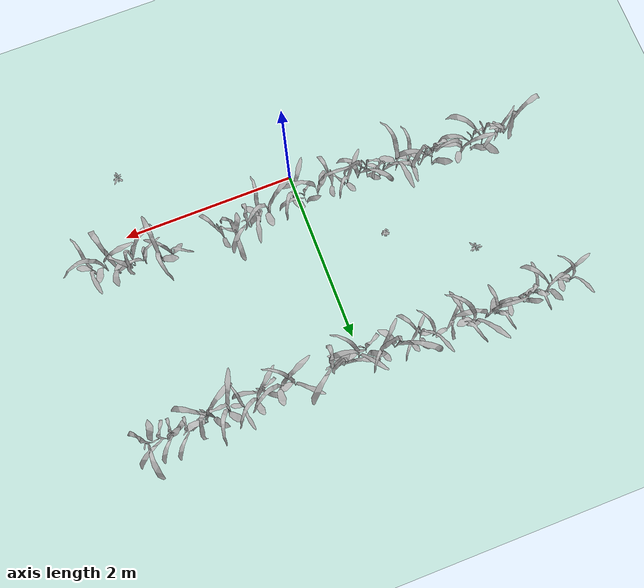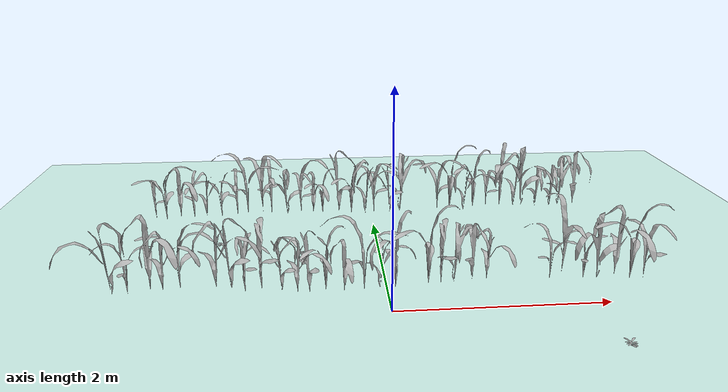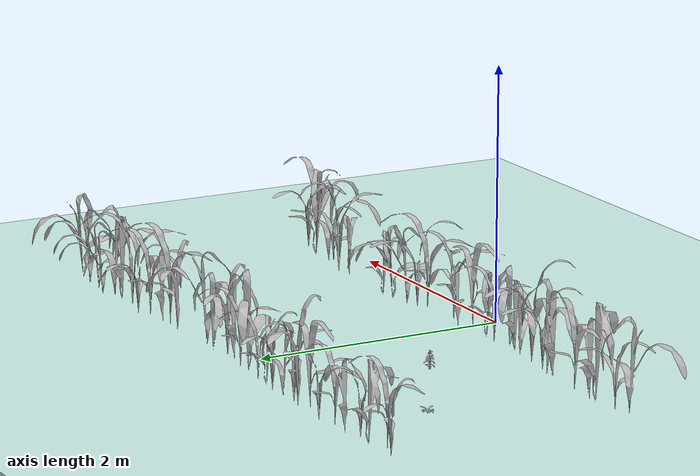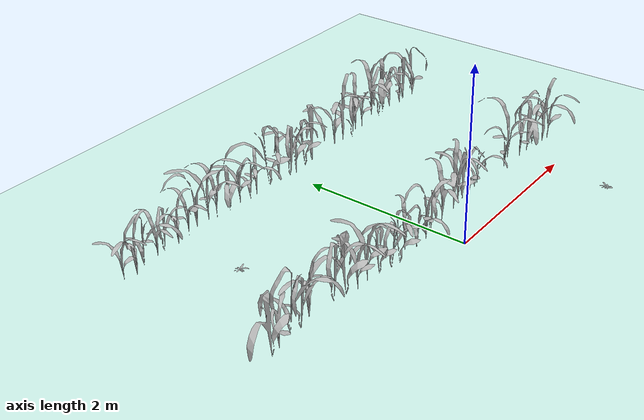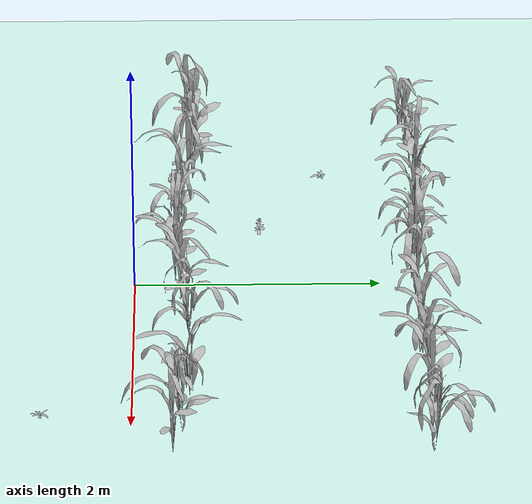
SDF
<sdf version="1.9">
 <world name="feild">
  <model name="ground">
   <static>true</static>
   <pose>0.00 3.25 -0.025 0 0 0</pose>
   <link name="link">
    <collision name="collision">
     <geometry><box><size>9.00 17.30 0.05</size></box></geometry>
     <surface><friction><ode><mu>1.0</mu><mu2>1.0</mu2></ode></friction></surface>
    </collision>
    <visual name="visual">
     <geometry><box><size>9.00 17.30 0.05</size></box></geometry>
     <material>
      <diffuse>0.81 0.95 0.92 1</diffuse>
      <pbr>
       <metal>
        <albedo_map>model://materials/textures/grass_color.jpg</albedo_map>
        <normal_map>model://materials/textures/grass_normal.jpg</normal_map>
       </metal>
      </pbr>
     </material>
    </visual>
   </link>
  </model>
  <model name="row_03">
   <static>true</static>
   <pose>0 0.400 0 0 0 0</pose>
   <link name="link">
    <visual name="p000">
     <pose>-2.514 0.016 0.056 0 0 4.29</pose>
     <geometry>
      <mesh><uri>model://maize_01/meshes/maize_01.dae</uri><scale>0.7590 0.7590 0.7590</scale></mesh>
     </geometry>
    </visual>
    <collision name="p000_c">
     <pose>-2.514 0.016 0.278 0 0 0</pose>
     <geometry><box><size>0.022 0.022 0.444</size></box></geometry>
    </collision>
    <visual name="p001">
     <pose>-2.380 0.047 0.042 0 0 2.70</pose>
     <geometry>
      <mesh><uri>model://maize_02/meshes/maize_02.dae</uri><scale>0.5744 0.5744 0.5744</scale></mesh>
     </geometry>
    </visual>
    <collision name="p001_c">
     <pose>-2.380 0.047 0.210 0 0 0</pose>
     <geometry><box><size>0.017 0.017 0.336</size></box></geometry>
    </collision>
    <visual name="p002">
     <pose>-2.186 0.082 0.058 0 0 6.25</pose>
     <geometry>
      <mesh><uri>model://maize_01/meshes/maize_01.dae</uri><scale>0.7957 0.7957 0.7957</scale></mesh>
     </geometry>
    </visual>
    <collision name="p002_c">
     <pose>-2.186 0.082 0.291 0 0 0</pose>
     <geometry><box><size>0.023 0.023 0.466</size></box></geometry>
    </collision>
    <visual name="p003">
     <pose>-2.066 0.058 0.047 0 0 0.44</pose>
     <geometry>
      <mesh><uri>model://maize_01/meshes/maize_01.dae</uri><scale>0.6481 0.6481 0.6481</scale></mesh>
     </geometry>
    </visual>
    <collision name="p003_c">
     <pose>-2.066 0.058 0.237 0 0 0</pose>
     <geometry><box><size>0.019 0.019 0.379</size></box></geometry>
    </collision>
    <visual name="p004">
     <pose>-1.915 0.091 0.052 0 0 5.27</pose>
     <geometry>
      <mesh><uri>model://maize_02/meshes/maize_02.dae</uri><scale>0.7047 0.7047 0.7047</scale></mesh>
     </geometry>
    </visual>
    <collision name="p004_c">
     <pose>-1.915 0.091 0.258 0 0 0</pose>
     <geometry><box><size>0.021 0.021 0.413</size></box></geometry>
    </collision>
    <visual name="p006">
     <pose>-1.582 0.064 0.053 0 0 0.52</pose>
     <geometry>
      <mesh><uri>model://maize_01/meshes/maize_01.dae</uri><scale>0.7249 0.7249 0.7249</scale></mesh>
     </geometry>
    </visual>
    <collision name="p006_c">
     <pose>-1.582 0.064 0.265 0 0 0</pose>
     <geometry><box><size>0.021 0.021 0.424</size></box></geometry>
    </collision>
    <visual name="p007">
     <pose>-1.443 0.031 0.056 0 0 3.80</pose>
     <geometry>
      <mesh><uri>model://maize_01/meshes/maize_01.dae</uri><scale>0.7638 0.7638 0.7638</scale></mesh>
     </geometry>
    </visual>
    <collision name="p007_c">
     <pose>-1.443 0.031 0.280 0 0 0</pose>
     <geometry><box><size>0.022 0.022 0.447</size></box></geometry>
    </collision>
    <visual name="p008">
     <pose>-1.313 -0.012 0.047 0 0 3.64</pose>
     <geometry>
      <mesh><uri>model://maize_02/meshes/maize_02.dae</uri><scale>0.6411 0.6411 0.6411</scale></mesh>
     </geometry>
    </visual>
    <collision name="p008_c">
     <pose>-1.313 -0.012 0.235 0 0 0</pose>
     <geometry><box><size>0.019 0.019 0.375</size></box></geometry>
    </collision>
    <visual name="p009">
     <pose>-1.161 -0.012 0.058 0 0 3.81</pose>
     <geometry>
      <mesh><uri>model://maize_02/meshes/maize_02.dae</uri><scale>0.7976 0.7976 0.7976</scale></mesh>
     </geometry>
    </visual>
    <collision name="p009_c">
     <pose>-1.161 -0.012 0.292 0 0 0</pose>
     <geometry><box><size>0.023 0.023 0.467</size></box></geometry>
    </collision>
    <visual name="p010">
     <pose>-0.979 -0.020 0.043 0 0 3.66</pose>
     <geometry>
      <mesh><uri>model://maize_01/meshes/maize_01.dae</uri><scale>0.5868 0.5868 0.5868</scale></mesh>
     </geometry>
    </visual>
    <collision name="p010_c">
     <pose>-0.979 -0.020 0.215 0 0 0</pose>
     <geometry><box><size>0.017 0.017 0.344</size></box></geometry>
    </collision>
    <visual name="p011">
     <pose>-0.833 -0.069 0.044 0 0 0.21</pose>
     <geometry>
      <mesh><uri>model://maize_01/meshes/maize_01.dae</uri><scale>0.5956 0.5956 0.5956</scale></mesh>
     </geometry>
    </visual>
    <collision name="p011_c">
     <pose>-0.833 -0.069 0.218 0 0 0</pose>
     <geometry><box><size>0.017 0.017 0.349</size></box></geometry>
    </collision>
    <visual name="p012">
     <pose>-0.724 -0.086 0.049 0 0 3.24</pose>
     <geometry>
      <mesh><uri>model://maize_01/meshes/maize_01.dae</uri><scale>0.6717 0.6717 0.6717</scale></mesh>
     </geometry>
    </visual>
    <collision name="p012_c">
     <pose>-0.724 -0.086 0.246 0 0 0</pose>
     <geometry><box><size>0.020 0.020 0.393</size></box></geometry>
    </collision>
    <visual name="p013">
     <pose>-0.576 -0.043 0.046 0 0 6.15</pose>
     <geometry>
      <mesh><uri>model://maize_02/meshes/maize_02.dae</uri><scale>0.6242 0.6242 0.6242</scale></mesh>
     </geometry>
    </visual>
    <collision name="p013_c">
     <pose>-0.576 -0.043 0.228 0 0 0</pose>
     <geometry><box><size>0.018 0.018 0.366</size></box></geometry>
    </collision>
    <visual name="p014">
     <pose>-0.409 -0.078 0.041 0 0 5.66</pose>
     <geometry>
      <mesh><uri>model://maize_01/meshes/maize_01.dae</uri><scale>0.5643 0.5643 0.5643</scale></mesh>
     </geometry>
    </visual>
    <collision name="p014_c">
     <pose>-0.409 -0.078 0.206 0 0 0</pose>
     <geometry><box><size>0.017 0.017 0.330</size></box></geometry>
    </collision>
    <visual name="p015">
     <pose>-0.223 -0.067 0.057 0 0 2.05</pose>
     <geometry>
      <mesh><uri>model://maize_02/meshes/maize_02.dae</uri><scale>0.7739 0.7739 0.7739</scale></mesh>
     </geometry>
    </visual>
    <collision name="p015_c">
     <pose>-0.223 -0.067 0.283 0 0 0</pose>
     <geometry><box><size>0.023 0.023 0.453</size></box></geometry>
    </collision>
    <visual name="p016">
     <pose>-0.072 -0.027 0.041 0 0 0.91</pose>
     <geometry>
      <mesh><uri>model://maize_01/meshes/maize_01.dae</uri><scale>0.5534 0.5534 0.5534</scale></mesh>
     </geometry>
    </visual>
    <collision name="p016_c">
     <pose>-0.072 -0.027 0.203 0 0 0</pose>
     <geometry><box><size>0.016 0.016 0.324</size></box></geometry>
    </collision>
    <visual name="p017">
     <pose>0.065 -0.068 0.054 0 0 0.02</pose>
     <geometry>
      <mesh><uri>model://maize_02/meshes/maize_02.dae</uri><scale>0.7423 0.7423 0.7423</scale></mesh>
     </geometry>
    </visual>
    <collision name="p017_c">
     <pose>0.065 -0.068 0.272 0 0 0</pose>
     <geometry><box><size>0.022 0.022 0.435</size></box></geometry>
    </collision>
    <visual name="p019">
     <pose>0.379 -0.019 0.058 0 0 5.85</pose>
     <geometry>
      <mesh><uri>model://maize_02/meshes/maize_02.dae</uri><scale>0.7911 0.7911 0.7911</scale></mesh>
     </geometry>
    </visual>
    <collision name="p019_c">
     <pose>0.379 -0.019 0.289 0 0 0</pose>
     <geometry><box><size>0.023 0.023 0.463</size></box></geometry>
    </collision>
    <visual name="p020">
     <pose>0.503 0.002 0.053 0 0 3.51</pose>
     <geometry>
      <mesh><uri>model://maize_02/meshes/maize_02.dae</uri><scale>0.7218 0.7218 0.7218</scale></mesh>
     </geometry>
    </visual>
    <collision name="p020_c">
     <pose>0.503 0.002 0.264 0 0 0</pose>
     <geometry><box><size>0.021 0.021 0.423</size></box></geometry>
    </collision>
    <visual name="p021">
     <pose>0.633 0.021 0.048 0 0 1.59</pose>
     <geometry>
      <mesh><uri>model://maize_01/meshes/maize_01.dae</uri><scale>0.6605 0.6605 0.6605</scale></mesh>
     </geometry>
    </visual>
    <collision name="p021_c">
     <pose>0.633 0.021 0.242 0 0 0</pose>
     <geometry><box><size>0.019 0.019 0.387</size></box></geometry>
    </collision>
    <visual name="p022">
     <pose>0.812 0.047 0.047 0 0 2.33</pose>
     <geometry>
      <mesh><uri>model://maize_01/meshes/maize_01.dae</uri><scale>0.6360 0.6360 0.6360</scale></mesh>
     </geometry>
    </visual>
    <collision name="p022_c">
     <pose>0.812 0.047 0.233 0 0 0</pose>
     <geometry><box><size>0.019 0.019 0.372</size></box></geometry>
    </collision>
    <visual name="p023">
     <pose>0.948 0.053 0.041 0 0 6.05</pose>
     <geometry>
      <mesh><uri>model://maize_01/meshes/maize_01.dae</uri><scale>0.5668 0.5668 0.5668</scale></mesh>
     </geometry>
    </visual>
    <collision name="p023_c">
     <pose>0.948 0.053 0.207 0 0 0</pose>
     <geometry><box><size>0.017 0.017 0.332</size></box></geometry>
    </collision>
    <visual name="p027">
     <pose>1.556 0.025 0.042 0 0 1.51</pose>
     <geometry>
      <mesh><uri>model://maize_02/meshes/maize_02.dae</uri><scale>0.5714 0.5714 0.5714</scale></mesh>
     </geometry>
    </visual>
    <collision name="p027_c">
     <pose>1.556 0.025 0.209 0 0 0</pose>
     <geometry><box><size>0.017 0.017 0.335</size></box></geometry>
    </collision>
    <visual name="p028">
     <pose>1.678 0.053 0.059 0 0 0.69</pose>
     <geometry>
      <mesh><uri>model://maize_02/meshes/maize_02.dae</uri><scale>0.8059 0.8059 0.8059</scale></mesh>
     </geometry>
    </visual>
    <collision name="p028_c">
     <pose>1.678 0.053 0.295 0 0 0</pose>
     <geometry><box><size>0.024 0.024 0.472</size></box></geometry>
    </collision>
    <visual name="p029">
     <pose>1.873 -0.004 0.041 0 0 2.48</pose>
     <geometry>
      <mesh><uri>model://maize_02/meshes/maize_02.dae</uri><scale>0.5603 0.5603 0.5603</scale></mesh>
     </geometry>
    </visual>
    <collision name="p029_c">
     <pose>1.873 -0.004 0.205 0 0 0</pose>
     <geometry><box><size>0.016 0.016 0.328</size></box></geometry>
    </collision>
    <visual name="p030">
     <pose>1.995 -0.026 0.053 0 0 4.62</pose>
     <geometry>
      <mesh><uri>model://maize_01/meshes/maize_01.dae</uri><scale>0.7192 0.7192 0.7192</scale></mesh>
     </geometry>
    </visual>
    <collision name="p030_c">
     <pose>1.995 -0.026 0.263 0 0 0</pose>
     <geometry><box><size>0.021 0.021 0.421</size></box></geometry>
    </collision>
    <visual name="p031">
     <pose>2.173 -0.006 0.057 0 0 5.78</pose>
     <geometry>
      <mesh><uri>model://maize_01/meshes/maize_01.dae</uri><scale>0.7788 0.7788 0.7788</scale></mesh>
     </geometry>
    </visual>
    <collision name="p031_c">
     <pose>2.173 -0.006 0.285 0 0 0</pose>
     <geometry><box><size>0.023 0.023 0.456</size></box></geometry>
    </collision>
    <visual name="p032">
     <pose>2.300 -0.072 0.058 0 0 5.45</pose>
     <geometry>
      <mesh><uri>model://maize_02/meshes/maize_02.dae</uri><scale>0.7959 0.7959 0.7959</scale></mesh>
     </geometry>
    </visual>
    <collision name="p032_c">
     <pose>2.300 -0.072 0.291 0 0 0</pose>
     <geometry><box><size>0.023 0.023 0.466</size></box></geometry>
    </collision>
    <visual name="p033">
     <pose>2.434 -0.072 0.049 0 0 3.89</pose>
     <geometry>
      <mesh><uri>model://maize_02/meshes/maize_02.dae</uri><scale>0.6759 0.6759 0.6759</scale></mesh>
     </geometry>
    </visual>
    <collision name="p033_c">
     <pose>2.434 -0.072 0.247 0 0 0</pose>
     <geometry><box><size>0.020 0.020 0.396</size></box></geometry>
    </collision>
   </link>
  </model>
  <model name="row_04">
   <static>true</static>
   <pose>0 2.300 0 0 0 0</pose>
   <link name="link">
    <visual name="p000">
     <pose>-2.500 -0.004 0.040 0 0 4.12</pose>
     <geometry>
      <mesh><uri>model://maize_02/meshes/maize_02.dae</uri><scale>0.5503 0.5503 0.5503</scale></mesh>
     </geometry>
    </visual>
    <collision name="p000_c">
     <pose>-2.500 -0.004 0.201 0 0 0</pose>
     <geometry><box><size>0.016 0.016 0.322</size></box></geometry>
    </collision>
    <visual name="p001">
     <pose>-2.373 -0.047 0.049 0 0 5.62</pose>
     <geometry>
      <mesh><uri>model://maize_02/meshes/maize_02.dae</uri><scale>0.6664 0.6664 0.6664</scale></mesh>
     </geometry>
    </visual>
    <collision name="p001_c">
     <pose>-2.373 -0.047 0.244 0 0 0</pose>
     <geometry><box><size>0.020 0.020 0.390</size></box></geometry>
    </collision>
    <visual name="p002">
     <pose>-2.225 0.014 0.048 0 0 6.17</pose>
     <geometry>
      <mesh><uri>model://maize_01/meshes/maize_01.dae</uri><scale>0.6543 0.6543 0.6543</scale></mesh>
     </geometry>
    </visual>
    <collision name="p002_c">
     <pose>-2.225 0.014 0.239 0 0 0</pose>
     <geometry><box><size>0.019 0.019 0.383</size></box></geometry>
    </collision>
    <visual name="p003">
     <pose>-2.065 -0.009 0.041 0 0 0.52</pose>
     <geometry>
      <mesh><uri>model://maize_02/meshes/maize_02.dae</uri><scale>0.5653 0.5653 0.5653</scale></mesh>
     </geometry>
    </visual>
    <collision name="p003_c">
     <pose>-2.065 -0.009 0.207 0 0 0</pose>
     <geometry><box><size>0.017 0.017 0.331</size></box></geometry>
    </collision>
    <visual name="p004">
     <pose>-1.928 0.036 0.043 0 0 0.68</pose>
     <geometry>
      <mesh><uri>model://maize_01/meshes/maize_01.dae</uri><scale>0.5823 0.5823 0.5823</scale></mesh>
     </geometry>
    </visual>
    <collision name="p004_c">
     <pose>-1.928 0.036 0.213 0 0 0</pose>
     <geometry><box><size>0.017 0.017 0.341</size></box></geometry>
    </collision>
    <visual name="p005">
     <pose>-1.754 0.023 0.043 0 0 5.47</pose>
     <geometry>
      <mesh><uri>model://maize_02/meshes/maize_02.dae</uri><scale>0.5925 0.5925 0.5925</scale></mesh>
     </geometry>
    </visual>
    <collision name="p005_c">
     <pose>-1.754 0.023 0.217 0 0 0</pose>
     <geometry><box><size>0.017 0.017 0.347</size></box></geometry>
    </collision>
    <visual name="p006">
     <pose>-1.576 0.053 0.041 0 0 0.70</pose>
     <geometry>
      <mesh><uri>model://maize_02/meshes/maize_02.dae</uri><scale>0.5587 0.5587 0.5587</scale></mesh>
     </geometry>
    </visual>
    <collision name="p006_c">
     <pose>-1.576 0.053 0.204 0 0 0</pose>
     <geometry><box><size>0.016 0.016 0.327</size></box></geometry>
    </collision>
    <visual name="p007">
     <pose>-1.452 0.053 0.057 0 0 2.01</pose>
     <geometry>
      <mesh><uri>model://maize_02/meshes/maize_02.dae</uri><scale>0.7807 0.7807 0.7807</scale></mesh>
     </geometry>
    </visual>
    <collision name="p007_c">
     <pose>-1.452 0.053 0.286 0 0 0</pose>
     <geometry><box><size>0.023 0.023 0.457</size></box></geometry>
    </collision>
    <visual name="p008">
     <pose>-1.277 0.062 0.059 0 0 4.34</pose>
     <geometry>
      <mesh><uri>model://maize_02/meshes/maize_02.dae</uri><scale>0.8067 0.8067 0.8067</scale></mesh>
     </geometry>
    </visual>
    <collision name="p008_c">
     <pose>-1.277 0.062 0.295 0 0 0</pose>
     <geometry><box><size>0.024 0.024 0.472</size></box></geometry>
    </collision>
    <visual name="p009">
     <pose>-1.176 0.038 0.049 0 0 0.80</pose>
     <geometry>
      <mesh><uri>model://maize_02/meshes/maize_02.dae</uri><scale>0.6675 0.6675 0.6675</scale></mesh>
     </geometry>
    </visual>
    <collision name="p009_c">
     <pose>-1.176 0.038 0.244 0 0 0</pose>
     <geometry><box><size>0.020 0.020 0.391</size></box></geometry>
    </collision>
    <visual name="p010">
     <pose>-0.992 0.029 0.044 0 0 4.68</pose>
     <geometry>
      <mesh><uri>model://maize_01/meshes/maize_01.dae</uri><scale>0.5979 0.5979 0.5979</scale></mesh>
     </geometry>
    </visual>
    <collision name="p010_c">
     <pose>-0.992 0.029 0.219 0 0 0</pose>
     <geometry><box><size>0.018 0.018 0.350</size></box></geometry>
    </collision>
    <visual name="p011">
     <pose>-0.827 0.030 0.043 0 0 4.08</pose>
     <geometry>
      <mesh><uri>model://maize_02/meshes/maize_02.dae</uri><scale>0.5867 0.5867 0.5867</scale></mesh>
     </geometry>
    </visual>
    <collision name="p011_c">
     <pose>-0.827 0.030 0.215 0 0 0</pose>
     <geometry><box><size>0.017 0.017 0.344</size></box></geometry>
    </collision>
    <visual name="p012">
     <pose>-0.687 0.004 0.041 0 0 6.03</pose>
     <geometry>
      <mesh><uri>model://maize_01/meshes/maize_01.dae</uri><scale>0.5650 0.5650 0.5650</scale></mesh>
     </geometry>
    </visual>
    <collision name="p012_c">
     <pose>-0.687 0.004 0.207 0 0 0</pose>
     <geometry><box><size>0.017 0.017 0.331</size></box></geometry>
    </collision>
    <visual name="p013">
     <pose>-0.577 0.017 0.040 0 0 6.10</pose>
     <geometry>
      <mesh><uri>model://maize_02/meshes/maize_02.dae</uri><scale>0.5527 0.5527 0.5527</scale></mesh>
     </geometry>
    </visual>
    <collision name="p013_c">
     <pose>-0.577 0.017 0.202 0 0 0</pose>
     <geometry><box><size>0.016 0.016 0.324</size></box></geometry>
    </collision>
    <visual name="p014">
     <pose>-0.383 -0.001 0.060 0 0 3.39</pose>
     <geometry>
      <mesh><uri>model://maize_01/meshes/maize_01.dae</uri><scale>0.8183 0.8183 0.8183</scale></mesh>
     </geometry>
    </visual>
    <collision name="p014_c">
     <pose>-0.383 -0.001 0.299 0 0 0</pose>
     <geometry><box><size>0.024 0.024 0.479</size></box></geometry>
    </collision>
    <visual name="p015">
     <pose>-0.237 -0.013 0.046 0 0 6.10</pose>
     <geometry>
      <mesh><uri>model://maize_02/meshes/maize_02.dae</uri><scale>0.6328 0.6328 0.6328</scale></mesh>
     </geometry>
    </visual>
    <collision name="p015_c">
     <pose>-0.237 -0.013 0.232 0 0 0</pose>
     <geometry><box><size>0.019 0.019 0.370</size></box></geometry>
    </collision>
    <visual name="p016">
     <pose>-0.072 -0.048 0.052 0 0 0.67</pose>
     <geometry>
      <mesh><uri>model://maize_01/meshes/maize_01.dae</uri><scale>0.7115 0.7115 0.7115</scale></mesh>
     </geometry>
    </visual>
    <collision name="p016_c">
     <pose>-0.072 -0.048 0.260 0 0 0</pose>
     <geometry><box><size>0.021 0.021 0.417</size></box></geometry>
    </collision>
    <visual name="p017">
     <pose>0.029 -0.041 0.051 0 0 4.39</pose>
     <geometry>
      <mesh><uri>model://maize_02/meshes/maize_02.dae</uri><scale>0.7026 0.7026 0.7026</scale></mesh>
     </geometry>
    </visual>
    <collision name="p017_c">
     <pose>0.029 -0.041 0.257 0 0 0</pose>
     <geometry><box><size>0.021 0.021 0.411</size></box></geometry>
    </collision>
    <visual name="p018">
     <pose>0.217 -0.014 0.047 0 0 3.61</pose>
     <geometry>
      <mesh><uri>model://maize_01/meshes/maize_01.dae</uri><scale>0.6467 0.6467 0.6467</scale></mesh>
     </geometry>
    </visual>
    <collision name="p018_c">
     <pose>0.217 -0.014 0.237 0 0 0</pose>
     <geometry><box><size>0.019 0.019 0.379</size></box></geometry>
    </collision>
    <visual name="p019">
     <pose>0.340 -0.026 0.057 0 0 1.52</pose>
     <geometry>
      <mesh><uri>model://maize_01/meshes/maize_01.dae</uri><scale>0.7778 0.7778 0.7778</scale></mesh>
     </geometry>
    </visual>
    <collision name="p019_c">
     <pose>0.340 -0.026 0.285 0 0 0</pose>
     <geometry><box><size>0.023 0.023 0.455</size></box></geometry>
    </collision>
    <visual name="p022">
     <pose>0.790 -0.001 0.051 0 0 4.56</pose>
     <geometry>
      <mesh><uri>model://maize_02/meshes/maize_02.dae</uri><scale>0.7036 0.7036 0.7036</scale></mesh>
     </geometry>
    </visual>
    <collision name="p022_c">
     <pose>0.790 -0.001 0.257 0 0 0</pose>
     <geometry><box><size>0.021 0.021 0.412</size></box></geometry>
    </collision>
    <visual name="p023">
     <pose>0.938 -0.013 0.060 0 0 5.73</pose>
     <geometry>
      <mesh><uri>model://maize_02/meshes/maize_02.dae</uri><scale>0.8178 0.8178 0.8178</scale></mesh>
     </geometry>
    </visual>
    <collision name="p023_c">
     <pose>0.938 -0.013 0.299 0 0 0</pose>
     <geometry><box><size>0.024 0.024 0.479</size></box></geometry>
    </collision>
    <visual name="p024">
     <pose>1.105 -0.031 0.045 0 0 0.63</pose>
     <geometry>
      <mesh><uri>model://maize_01/meshes/maize_01.dae</uri><scale>0.6177 0.6177 0.6177</scale></mesh>
     </geometry>
    </visual>
    <collision name="p024_c">
     <pose>1.105 -0.031 0.226 0 0 0</pose>
     <geometry><box><size>0.018 0.018 0.362</size></box></geometry>
    </collision>
    <visual name="p025">
     <pose>1.225 0.016 0.054 0 0 6.03</pose>
     <geometry>
      <mesh><uri>model://maize_02/meshes/maize_02.dae</uri><scale>0.7316 0.7316 0.7316</scale></mesh>
     </geometry>
    </visual>
    <collision name="p025_c">
     <pose>1.225 0.016 0.268 0 0 0</pose>
     <geometry><box><size>0.021 0.021 0.428</size></box></geometry>
    </collision>
    <visual name="p026">
     <pose>1.393 0.040 0.041 0 0 3.91</pose>
     <geometry>
      <mesh><uri>model://maize_02/meshes/maize_02.dae</uri><scale>0.5561 0.5561 0.5561</scale></mesh>
     </geometry>
    </visual>
    <collision name="p026_c">
     <pose>1.393 0.040 0.203 0 0 0</pose>
     <geometry><box><size>0.016 0.016 0.326</size></box></geometry>
    </collision>
    <visual name="p027">
     <pose>1.551 0.014 0.058 0 0 0.22</pose>
     <geometry>
      <mesh><uri>model://maize_02/meshes/maize_02.dae</uri><scale>0.7964 0.7964 0.7964</scale></mesh>
     </geometry>
    </visual>
    <collision name="p027_c">
     <pose>1.551 0.014 0.291 0 0 0</pose>
     <geometry><box><size>0.023 0.023 0.466</size></box></geometry>
    </collision>
    <visual name="p028">
     <pose>1.726 0.017 0.054 0 0 0.28</pose>
     <geometry>
      <mesh><uri>model://maize_01/meshes/maize_01.dae</uri><scale>0.7314 0.7314 0.7314</scale></mesh>
     </geometry>
    </visual>
    <collision name="p028_c">
     <pose>1.726 0.017 0.268 0 0 0</pose>
     <geometry><box><size>0.021 0.021 0.428</size></box></geometry>
    </collision>
    <visual name="p029">
     <pose>1.822 0.038 0.058 0 0 4.52</pose>
     <geometry>
      <mesh><uri>model://maize_01/meshes/maize_01.dae</uri><scale>0.7921 0.7921 0.7921</scale></mesh>
     </geometry>
    </visual>
    <collision name="p029_c">
     <pose>1.822 0.038 0.290 0 0 0</pose>
     <geometry><box><size>0.023 0.023 0.464</size></box></geometry>
    </collision>
    <visual name="p030">
     <pose>2.011 0.057 0.040 0 0 1.73</pose>
     <geometry>
      <mesh><uri>model://maize_01/meshes/maize_01.dae</uri><scale>0.5514 0.5514 0.5514</scale></mesh>
     </geometry>
    </visual>
    <collision name="p030_c">
     <pose>2.011 0.057 0.202 0 0 0</pose>
     <geometry><box><size>0.016 0.016 0.323</size></box></geometry>
    </collision>
    <visual name="p031">
     <pose>2.176 0.015 0.042 0 0 1.75</pose>
     <geometry>
      <mesh><uri>model://maize_01/meshes/maize_01.dae</uri><scale>0.5743 0.5743 0.5743</scale></mesh>
     </geometry>
    </visual>
    <collision name="p031_c">
     <pose>2.176 0.015 0.210 0 0 0</pose>
     <geometry><box><size>0.017 0.017 0.336</size></box></geometry>
    </collision>
    <visual name="p032">
     <pose>2.289 0.038 0.048 0 0 1.40</pose>
     <geometry>
      <mesh><uri>model://maize_01/meshes/maize_01.dae</uri><scale>0.6583 0.6583 0.6583</scale></mesh>
     </geometry>
    </visual>
    <collision name="p032_c">
     <pose>2.289 0.038 0.241 0 0 0</pose>
     <geometry><box><size>0.019 0.019 0.385</size></box></geometry>
    </collision>
    <visual name="p033">
     <pose>2.465 0.017 0.054 0 0 2.45</pose>
     <geometry>
      <mesh><uri>model://maize_01/meshes/maize_01.dae</uri><scale>0.7372 0.7372 0.7372</scale></mesh>
     </geometry>
    </visual>
    <collision name="p033_c">
     <pose>2.465 0.017 0.270 0 0 0</pose>
     <geometry><box><size>0.022 0.022 0.432</size></box></geometry>
    </collision>
   </link>
  </model>
  <include>
   <uri>model://nettle</uri>
   <name>weed_02</name>
   <pose>-0.786 1.025 0 0 0 6.28</pose>
   <static>true</static>
  </include>
  <include>
   <uri>model://unknown_weed</uri>
   <name>weed_04</name>
   <pose>1.865 -0.707 0 0 0 0.69</pose>
   <static>true</static>
  </include>
  <include>
   <uri>model://unknown_weed</uri>
   <name>weed_07</name>
   <pose>-1.685 1.548 0 0 0 5.10</pose>
   <static>true</static>
  </include>
 </world>
</sdf>
